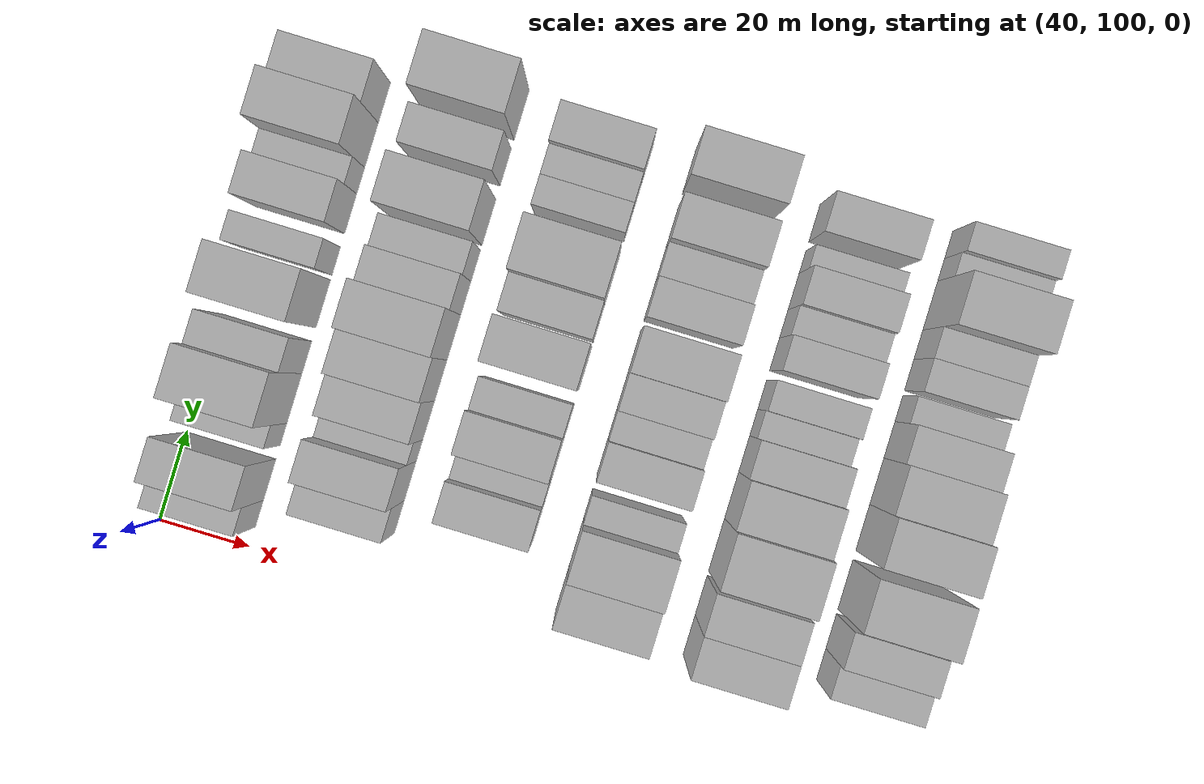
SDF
<sdf version="1.6">
 <world name="default">
  <model name="building_69">
   <static>1</static>
   <pose>50.0000 107.4569 0 0.000000 0.000000 0.000000</pose>
   <link name="link">
    <pose>0 0 7.50 0 0 0</pose>
    <collision name="collision"><geometry><box><size>20.0000 6.0165 15.0000</size></box></geometry></collision>
    <visual name="visual">
     <cast_shadows>0</cast_shadows>
     <geometry><box><size>20.0000 6.0165 15.0000</size></box></geometry>
     <material>
      <script>
       <uri>model://HANNAS_wall/materials/scripts</uri>
       <uri>model://HANNAS_wall/materials/textures</uri>
       <name>vrc/HANNAS_wall</name>
      </script>
     </material>
    </visual>
   </link>
  </model>
  <model name="building_70">
   <static>1</static>
   <pose>50.0000 115.1150 0 0.000000 0.000000 0.000000</pose>
   <link name="link">
    <pose>0 0 10.50 0 0 0</pose>
    <collision name="collision"><geometry><box><size>20.0000 9.2997 21.0000</size></box></geometry></collision>
    <visual name="visual">
     <cast_shadows>0</cast_shadows>
     <geometry><box><size>20.0000 9.2997 21.0000</size></box></geometry>
     <material>
      <script>
       <uri>model://HANNAS_wall/materials/scripts</uri>
       <uri>model://HANNAS_wall/materials/textures</uri>
       <name>vrc/HANNAS_wall</name>
      </script>
     </material>
    </visual>
   </link>
  </model>
  <model name="building_71">
   <static>1</static>
   <pose>50.0000 125.2679 0 0.000000 0.000000 0.000000</pose>
   <link name="link">
    <pose>0 0 6.00 0 0 0</pose>
    <collision name="collision"><geometry><box><size>20.0000 5.0061 12.0000</size></box></geometry></collision>
    <visual name="visual">
     <cast_shadows>0</cast_shadows>
     <geometry><box><size>20.0000 5.0061 12.0000</size></box></geometry>
     <material>
      <script>
       <uri>model://HANNAS_wall/materials/scripts</uri>
       <uri>model://HANNAS_wall/materials/textures</uri>
       <name>vrc/HANNAS_wall</name>
      </script>
     </material>
    </visual>
   </link>
  </model>
  <model name="building_72">
   <static>1</static>
   <pose>50.0000 133.3773 0 0.000000 0.000000 0.000000</pose>
   <link name="link">
    <pose>0 0 12.00 0 0 0</pose>
    <collision name="collision"><geometry><box><size>20.0000 11.2127 24.0000</size></box></geometry></collision>
    <visual name="visual">
     <cast_shadows>0</cast_shadows>
     <geometry><box><size>20.0000 11.2127 24.0000</size></box></geometry>
     <material>
      <script>
       <uri>model://HANNAS_wall/materials/scripts</uri>
       <uri>model://HANNAS_wall/materials/textures</uri>
       <name>vrc/HANNAS_wall</name>
      </script>
     </material>
    </visual>
   </link>
  </model>
  <model name="building_73">
   <static>1</static>
   <pose>50.0000 142.6111 0 0.000000 0.000000 0.000000</pose>
   <link name="link">
    <pose>0 0 9.00 0 0 0</pose>
    <collision name="collision"><geometry><box><size>20.0000 7.2549 18.0000</size></box></geometry></collision>
    <visual name="visual">
     <cast_shadows>0</cast_shadows>
     <geometry><box><size>20.0000 7.2549 18.0000</size></box></geometry>
     <material>
      <script>
       <uri>model://HANNAS_wall/materials/scripts</uri>
       <uri>model://HANNAS_wall/materials/textures</uri>
       <name>vrc/HANNAS_wall</name>
      </script>
     </material>
    </visual>
   </link>
  </model>
  <model name="building_74">
   <static>1</static>
   <pose>50.0000 154.6305 0 0.000000 0.000000 0.000000</pose>
   <link name="link">
    <pose>0 0 12.00 0 0 0</pose>
    <collision name="collision"><geometry><box><size>20.0000 10.7839 24.0000</size></box></geometry></collision>
    <visual name="visual">
     <cast_shadows>0</cast_shadows>
     <geometry><box><size>20.0000 10.7839 24.0000</size></box></geometry>
     <material>
      <script>
       <uri>model://HANNAS_wall/materials/scripts</uri>
       <uri>model://HANNAS_wall/materials/textures</uri>
       <name>vrc/HANNAS_wall</name>
      </script>
     </material>
    </visual>
   </link>
  </model>
  <model name="building_75">
   <static>1</static>
   <pose>50.0000 164.1922 0 0.000000 0.000000 0.000000</pose>
   <link name="link">
    <pose>0 0 7.50 0 0 0</pose>
    <collision name="collision"><geometry><box><size>20.0000 6.3394 15.0000</size></box></geometry></collision>
    <visual name="visual">
     <cast_shadows>0</cast_shadows>
     <geometry><box><size>20.0000 6.3394 15.0000</size></box></geometry>
     <material>
      <script>
       <uri>model://HANNAS_wall/materials/scripts</uri>
       <uri>model://HANNAS_wall/materials/textures</uri>
       <name>vrc/HANNAS_wall</name>
      </script>
     </material>
    </visual>
   </link>
  </model>
  <model name="building_76">
   <static>1</static>
   <pose>50.0000 174.8558 0 0.000000 0.000000 0.000000</pose>
   <link name="link">
    <pose>0 0 9.00 0 0 0</pose>
    <collision name="collision"><geometry><box><size>20.0000 8.9878 18.0000</size></box></geometry></collision>
    <visual name="visual">
     <cast_shadows>0</cast_shadows>
     <geometry><box><size>20.0000 8.9878 18.0000</size></box></geometry>
     <material>
      <script>
       <uri>model://HANNAS_wall/materials/scripts</uri>
       <uri>model://HANNAS_wall/materials/textures</uri>
       <name>vrc/HANNAS_wall</name>
      </script>
     </material>
    </visual>
   </link>
  </model>
  <model name="building_77">
   <static>1</static>
   <pose>50.0000 182.2877 0 0.000000 0.000000 0.000000</pose>
   <link name="link">
    <pose>0 0 6.00 0 0 0</pose>
    <collision name="collision"><geometry><box><size>20.0000 5.8762 12.0000</size></box></geometry></collision>
    <visual name="visual">
     <cast_shadows>0</cast_shadows>
     <geometry><box><size>20.0000 5.8762 12.0000</size></box></geometry>
     <material>
      <script>
       <uri>model://HANNAS_wall/materials/scripts</uri>
       <uri>model://HANNAS_wall/materials/textures</uri>
       <name>vrc/HANNAS_wall</name>
      </script>
     </material>
    </visual>
   </link>
  </model>
  <model name="building_78">
   <static>1</static>
   <pose>50.0000 190.2573 0 0.000000 0.000000 0.000000</pose>
   <link name="link">
    <pose>0 0 12.00 0 0 0</pose>
    <collision name="collision"><geometry><box><size>20.0000 10.0630 24.0000</size></box></geometry></collision>
    <visual name="visual">
     <cast_shadows>0</cast_shadows>
     <geometry><box><size>20.0000 10.0630 24.0000</size></box></geometry>
     <material>
      <script>
       <uri>model://HANNAS_wall/materials/scripts</uri>
       <uri>model://HANNAS_wall/materials/textures</uri>
       <name>vrc/HANNAS_wall</name>
      </script>
     </material>
    </visual>
   </link>
  </model>
  <model name="building_79">
   <static>1</static>
   <pose>50.0000 199.7857 0 0.000000 0.000000 0.000000</pose>
   <link name="link">
    <pose>0 0 9.00 0 0 0</pose>
    <collision name="collision"><geometry><box><size>20.0000 8.9939 18.0000</size></box></geometry></collision>
    <visual name="visual">
     <cast_shadows>0</cast_shadows>
     <geometry><box><size>20.0000 8.9939 18.0000</size></box></geometry>
     <material>
      <script>
       <uri>model://HANNAS_wall/materials/scripts</uri>
       <uri>model://HANNAS_wall/materials/textures</uri>
       <name>vrc/HANNAS_wall</name>
      </script>
     </material>
    </visual>
   </link>
  </model>
  <model name="building_187">
   <static>1</static>
   <pose>79.0000 115.5072 0 0.000000 0.000000 0.000000</pose>
   <link name="link">
    <pose>0 0 7.50 0 0 0</pose>
    <collision name="collision"><geometry><box><size>20.0000 7.3291 15.0000</size></box></geometry></collision>
    <visual name="visual">
     <cast_shadows>0</cast_shadows>
     <geometry><box><size>20.0000 7.3291 15.0000</size></box></geometry>
     <material>
      <script>
       <uri>model://HANNAS_wall/materials/scripts</uri>
       <uri>model://HANNAS_wall/materials/textures</uri>
       <name>vrc/HANNAS_wall</name>
      </script>
     </material>
    </visual>
   </link>
  </model>
  <model name="building_188">
   <static>1</static>
   <pose>79.0000 123.6156 0 0.000000 0.000000 0.000000</pose>
   <link name="link">
    <pose>0 0 10.50 0 0 0</pose>
    <collision name="collision"><geometry><box><size>20.0000 8.8877 21.0000</size></box></geometry></collision>
    <visual name="visual">
     <cast_shadows>0</cast_shadows>
     <geometry><box><size>20.0000 8.8877 21.0000</size></box></geometry>
     <material>
      <script>
       <uri>model://HANNAS_wall/materials/scripts</uri>
       <uri>model://HANNAS_wall/materials/textures</uri>
       <name>vrc/HANNAS_wall</name>
      </script>
     </material>
    </visual>
   </link>
  </model>
  <model name="building_189">
   <static>1</static>
   <pose>79.0000 130.4617 0 0.000000 0.000000 0.000000</pose>
   <link name="link">
    <pose>0 0 6.00 0 0 0</pose>
    <collision name="collision"><geometry><box><size>20.0000 4.8045 12.0000</size></box></geometry></collision>
    <visual name="visual">
     <cast_shadows>0</cast_shadows>
     <geometry><box><size>20.0000 4.8045 12.0000</size></box></geometry>
     <material>
      <script>
       <uri>model://HANNAS_wall/materials/scripts</uri>
       <uri>model://HANNAS_wall/materials/textures</uri>
       <name>vrc/HANNAS_wall</name>
      </script>
     </material>
    </visual>
   </link>
  </model>
  <model name="building_190">
   <static>1</static>
   <pose>79.0000 137.2318 0 0.000000 0.000000 0.000000</pose>
   <link name="link">
    <pose>0 0 9.00 0 0 0</pose>
    <collision name="collision"><geometry><box><size>20.0000 8.7357 18.0000</size></box></geometry></collision>
    <visual name="visual">
     <cast_shadows>0</cast_shadows>
     <geometry><box><size>20.0000 8.7357 18.0000</size></box></geometry>
     <material>
      <script>
       <uri>model://HANNAS_wall/materials/scripts</uri>
       <uri>model://HANNAS_wall/materials/textures</uri>
       <name>vrc/HANNAS_wall</name>
      </script>
     </material>
    </visual>
   </link>
  </model>
  <model name="building_191">
   <static>1</static>
   <pose>79.0000 146.2178 0 0.000000 0.000000 0.000000</pose>
   <link name="link">
    <pose>0 0 10.50 0 0 0</pose>
    <collision name="collision"><geometry><box><size>20.0000 9.2363 21.0000</size></box></geometry></collision>
    <visual name="visual">
     <cast_shadows>0</cast_shadows>
     <geometry><box><size>20.0000 9.2363 21.0000</size></box></geometry>
     <material>
      <script>
       <uri>model://HANNAS_wall/materials/scripts</uri>
       <uri>model://HANNAS_wall/materials/textures</uri>
       <name>vrc/HANNAS_wall</name>
      </script>
     </material>
    </visual>
   </link>
  </model>
  <model name="building_192">
   <static>1</static>
   <pose>79.0000 155.8728 0 0.000000 0.000000 0.000000</pose>
   <link name="link">
    <pose>0 0 12.00 0 0 0</pose>
    <collision name="collision"><geometry><box><size>20.0000 10.0738 24.0000</size></box></geometry></collision>
    <visual name="visual">
     <cast_shadows>0</cast_shadows>
     <geometry><box><size>20.0000 10.0738 24.0000</size></box></geometry>
     <material>
      <script>
       <uri>model://HANNAS_wall/materials/scripts</uri>
       <uri>model://HANNAS_wall/materials/textures</uri>
       <name>vrc/HANNAS_wall</name>
      </script>
     </material>
    </visual>
   </link>
  </model>
  <model name="building_193">
   <static>1</static>
   <pose>79.0000 164.6896 0 0.000000 0.000000 0.000000</pose>
   <link name="link">
    <pose>0 0 9.00 0 0 0</pose>
    <collision name="collision"><geometry><box><size>20.0000 7.5597 18.0000</size></box></geometry></collision>
    <visual name="visual">
     <cast_shadows>0</cast_shadows>
     <geometry><box><size>20.0000 7.5597 18.0000</size></box></geometry>
     <material>
      <script>
       <uri>model://HANNAS_wall/materials/scripts</uri>
       <uri>model://HANNAS_wall/materials/textures</uri>
       <name>vrc/HANNAS_wall</name>
      </script>
     </material>
    </visual>
   </link>
  </model>
  <model name="building_194">
   <static>1</static>
   <pose>79.0000 172.0007 0 0.000000 0.000000 0.000000</pose>
   <link name="link">
    <pose>0 0 7.50 0 0 0</pose>
    <collision name="collision"><geometry><box><size>20.0000 7.0624 15.0000</size></box></geometry></collision>
    <visual name="visual">
     <cast_shadows>0</cast_shadows>
     <geometry><box><size>20.0000 7.0624 15.0000</size></box></geometry>
     <material>
      <script>
       <uri>model://HANNAS_wall/materials/scripts</uri>
       <uri>model://HANNAS_wall/materials/textures</uri>
       <name>vrc/HANNAS_wall</name>
      </script>
     </material>
    </visual>
   </link>
  </model>
  <model name="building_195">
   <static>1</static>
   <pose>79.0000 181.7162 0 0.000000 0.000000 0.000000</pose>
   <link name="link">
    <pose>0 0 12.00 0 0 0</pose>
    <collision name="collision"><geometry><box><size>20.0000 10.3686 24.0000</size></box></geometry></collision>
    <visual name="visual">
     <cast_shadows>0</cast_shadows>
     <geometry><box><size>20.0000 10.3686 24.0000</size></box></geometry>
     <material>
      <script>
       <uri>model://HANNAS_wall/materials/scripts</uri>
       <uri>model://HANNAS_wall/materials/textures</uri>
       <name>vrc/HANNAS_wall</name>
      </script>
     </material>
    </visual>
   </link>
  </model>
  <model name="building_196">
   <static>1</static>
   <pose>79.0000 194.0558 0 0.000000 0.000000 0.000000</pose>
   <link name="link">
    <pose>0 0 9.00 0 0 0</pose>
    <collision name="collision"><geometry><box><size>20.0000 8.3106 18.0000</size></box></geometry></collision>
    <visual name="visual">
     <cast_shadows>0</cast_shadows>
     <geometry><box><size>20.0000 8.3106 18.0000</size></box></geometry>
     <material>
      <script>
       <uri>model://HANNAS_wall/materials/scripts</uri>
       <uri>model://HANNAS_wall/materials/textures</uri>
       <name>vrc/HANNAS_wall</name>
      </script>
     </material>
    </visual>
   </link>
  </model>
  <model name="building_197">
   <static>1</static>
   <pose>79.0000 205.8120 0 0.000000 0.000000 0.000000</pose>
   <link name="link">
    <pose>0 0 12.00 0 0 0</pose>
    <collision name="collision"><geometry><box><size>20.0000 11.2017 24.0000</size></box></geometry></collision>
    <visual name="visual">
     <cast_shadows>0</cast_shadows>
     <geometry><box><size>20.0000 11.2017 24.0000</size></box></geometry>
     <material>
      <script>
       <uri>model://HANNAS_wall/materials/scripts</uri>
       <uri>model://HANNAS_wall/materials/textures</uri>
       <name>vrc/HANNAS_wall</name>
      </script>
     </material>
    </visual>
   </link>
  </model>
  <model name="building_287">
   <static>1</static>
   <pose>108.0000 123.6061 0 0.000000 0.000000 0.000000</pose>
   <link name="link">
    <pose>0 0 9.00 0 0 0</pose>
    <collision name="collision"><geometry><box><size>20.0000 8.7304 18.0000</size></box></geometry></collision>
    <visual name="visual">
     <cast_shadows>0</cast_shadows>
     <geometry><box><size>20.0000 8.7304 18.0000</size></box></geometry>
     <material>
      <script>
       <uri>model://HANNAS_wall/materials/scripts</uri>
       <uri>model://HANNAS_wall/materials/textures</uri>
       <name>vrc/HANNAS_wall</name>
      </script>
     </material>
    </visual>
   </link>
  </model>
  <model name="building_288">
   <static>1</static>
   <pose>108.0000 130.8377 0 0.000000 0.000000 0.000000</pose>
   <link name="link">
    <pose>0 0 6.00 0 0 0</pose>
    <collision name="collision"><geometry><box><size>20.0000 5.7327 12.0000</size></box></geometry></collision>
    <visual name="visual">
     <cast_shadows>0</cast_shadows>
     <geometry><box><size>20.0000 5.7327 12.0000</size></box></geometry>
     <material>
      <script>
       <uri>model://HANNAS_wall/materials/scripts</uri>
       <uri>model://HANNAS_wall/materials/textures</uri>
       <name>vrc/HANNAS_wall</name>
      </script>
     </material>
    </visual>
   </link>
  </model>
  <model name="building_289">
   <static>1</static>
   <pose>108.0000 138.2492 0 0.000000 0.000000 0.000000</pose>
   <link name="link">
    <pose>0 0 10.50 0 0 0</pose>
    <collision name="collision"><geometry><box><size>20.0000 9.0903 21.0000</size></box></geometry></collision>
    <visual name="visual">
     <cast_shadows>0</cast_shadows>
     <geometry><box><size>20.0000 9.0903 21.0000</size></box></geometry>
     <material>
      <script>
       <uri>model://HANNAS_wall/materials/scripts</uri>
       <uri>model://HANNAS_wall/materials/textures</uri>
       <name>vrc/HANNAS_wall</name>
      </script>
     </material>
    </visual>
   </link>
  </model>
  <model name="building_290">
   <static>1</static>
   <pose>108.0000 146.3422 0 0.000000 0.000000 0.000000</pose>
   <link name="link">
    <pose>0 0 7.50 0 0 0</pose>
    <collision name="collision"><geometry><box><size>20.0000 7.0957 15.0000</size></box></geometry></collision>
    <visual name="visual">
     <cast_shadows>0</cast_shadows>
     <geometry><box><size>20.0000 7.0957 15.0000</size></box></geometry>
     <material>
      <script>
       <uri>model://HANNAS_wall/materials/scripts</uri>
       <uri>model://HANNAS_wall/materials/textures</uri>
       <name>vrc/HANNAS_wall</name>
      </script>
     </material>
    </visual>
   </link>
  </model>
  <model name="building_291">
   <static>1</static>
   <pose>108.0000 157.7060 0 0.000000 0.000000 0.000000</pose>
   <link name="link">
    <pose>0 0 12.00 0 0 0</pose>
    <collision name="collision"><geometry><box><size>20.0000 9.6319 24.0000</size></box></geometry></collision>
    <visual name="visual">
     <cast_shadows>0</cast_shadows>
     <geometry><box><size>20.0000 9.6319 24.0000</size></box></geometry>
     <material>
      <script>
       <uri>model://HANNAS_wall/materials/scripts</uri>
       <uri>model://HANNAS_wall/materials/textures</uri>
       <name>vrc/HANNAS_wall</name>
      </script>
     </material>
    </visual>
   </link>
  </model>
  <model name="building_292">
   <static>1</static>
   <pose>108.0000 167.5947 0 0.000000 0.000000 0.000000</pose>
   <link name="link">
    <pose>0 0 9.00 0 0 0</pose>
    <collision name="collision"><geometry><box><size>20.0000 8.1455 18.0000</size></box></geometry></collision>
    <visual name="visual">
     <cast_shadows>0</cast_shadows>
     <geometry><box><size>20.0000 8.1455 18.0000</size></box></geometry>
     <material>
      <script>
       <uri>model://HANNAS_wall/materials/scripts</uri>
       <uri>model://HANNAS_wall/materials/textures</uri>
       <name>vrc/HANNAS_wall</name>
      </script>
     </material>
    </visual>
   </link>
  </model>
  <model name="building_293">
   <static>1</static>
   <pose>108.0000 177.4233 0 0.000000 0.000000 0.000000</pose>
   <link name="link">
    <pose>0 0 12.00 0 0 0</pose>
    <collision name="collision"><geometry><box><size>20.0000 11.5117 24.0000</size></box></geometry></collision>
    <visual name="visual">
     <cast_shadows>0</cast_shadows>
     <geometry><box><size>20.0000 11.5117 24.0000</size></box></geometry>
     <material>
      <script>
       <uri>model://HANNAS_wall/materials/scripts</uri>
       <uri>model://HANNAS_wall/materials/textures</uri>
       <name>vrc/HANNAS_wall</name>
      </script>
     </material>
    </visual>
   </link>
  </model>
  <model name="building_294">
   <static>1</static>
   <pose>108.0000 189.3824 0 0.000000 0.000000 0.000000</pose>
   <link name="link">
    <pose>0 0 7.50 0 0 0</pose>
    <collision name="collision"><geometry><box><size>20.0000 6.4065 15.0000</size></box></geometry></collision>
    <visual name="visual">
     <cast_shadows>0</cast_shadows>
     <geometry><box><size>20.0000 6.4065 15.0000</size></box></geometry>
     <material>
      <script>
       <uri>model://HANNAS_wall/materials/scripts</uri>
       <uri>model://HANNAS_wall/materials/textures</uri>
       <name>vrc/HANNAS_wall</name>
      </script>
     </material>
    </visual>
   </link>
  </model>
  <model name="building_295">
   <static>1</static>
   <pose>108.0000 195.7931 0 0.000000 0.000000 0.000000</pose>
   <link name="link">
    <pose>0 0 7.50 0 0 0</pose>
    <collision name="collision"><geometry><box><size>20.0000 6.4149 15.0000</size></box></geometry></collision>
    <visual name="visual">
     <cast_shadows>0</cast_shadows>
     <geometry><box><size>20.0000 6.4149 15.0000</size></box></geometry>
     <material>
      <script>
       <uri>model://HANNAS_wall/materials/scripts</uri>
       <uri>model://HANNAS_wall/materials/textures</uri>
       <name>vrc/HANNAS_wall</name>
      </script>
     </material>
    </visual>
   </link>
  </model>
  <model name="building_296">
   <static>1</static>
   <pose>108.0000 203.2308 0 0.000000 0.000000 0.000000</pose>
   <link name="link">
    <pose>0 0 9.00 0 0 0</pose>
    <collision name="collision"><geometry><box><size>20.0000 8.4604 18.0000</size></box></geometry></collision>
    <visual name="visual">
     <cast_shadows>0</cast_shadows>
     <geometry><box><size>20.0000 8.4604 18.0000</size></box></geometry>
     <material>
      <script>
       <uri>model://HANNAS_wall/materials/scripts</uri>
       <uri>model://HANNAS_wall/materials/textures</uri>
       <name>vrc/HANNAS_wall</name>
      </script>
     </material>
    </visual>
   </link>
  </model>
  <model name="building_402">
   <static>1</static>
   <pose>137.0000 111.5499 0 0.000000 0.000000 0.000000</pose>
   <link name="link">
    <pose>0 0 10.50 0 0 0</pose>
    <collision name="collision"><geometry><box><size>20.0000 9.8660 21.0000</size></box></geometry></collision>
    <visual name="visual">
     <cast_shadows>0</cast_shadows>
     <geometry><box><size>20.0000 9.8660 21.0000</size></box></geometry>
     <material>
      <script>
       <uri>model://HANNAS_wall/materials/scripts</uri>
       <uri>model://HANNAS_wall/materials/textures</uri>
       <name>vrc/HANNAS_wall</name>
      </script>
     </material>
    </visual>
   </link>
  </model>
  <model name="building_403">
   <static>1</static>
   <pose>137.0000 121.9337 0 0.000000 0.000000 0.000000</pose>
   <link name="link">
    <pose>0 0 12.00 0 0 0</pose>
    <collision name="collision"><geometry><box><size>20.0000 10.9016 24.0000</size></box></geometry></collision>
    <visual name="visual">
     <cast_shadows>0</cast_shadows>
     <geometry><box><size>20.0000 10.9016 24.0000</size></box></geometry>
     <material>
      <script>
       <uri>model://HANNAS_wall/materials/scripts</uri>
       <uri>model://HANNAS_wall/materials/textures</uri>
       <name>vrc/HANNAS_wall</name>
      </script>
     </material>
    </visual>
   </link>
  </model>
  <model name="building_404">
   <static>1</static>
   <pose>137.0000 130.4725 0 0.000000 0.000000 0.000000</pose>
   <link name="link">
    <pose>0 0 7.50 0 0 0</pose>
    <collision name="collision"><geometry><box><size>20.0000 6.1761 15.0000</size></box></geometry></collision>
    <visual name="visual">
     <cast_shadows>0</cast_shadows>
     <geometry><box><size>20.0000 6.1761 15.0000</size></box></geometry>
     <material>
      <script>
       <uri>model://HANNAS_wall/materials/scripts</uri>
       <uri>model://HANNAS_wall/materials/textures</uri>
       <name>vrc/HANNAS_wall</name>
      </script>
     </material>
    </visual>
   </link>
  </model>
  <model name="building_405">
   <static>1</static>
   <pose>137.0000 140.7983 0 0.000000 0.000000 0.000000</pose>
   <link name="link">
    <pose>0 0 9.00 0 0 0</pose>
    <collision name="collision"><geometry><box><size>20.0000 8.4754 18.0000</size></box></geometry></collision>
    <visual name="visual">
     <cast_shadows>0</cast_shadows>
     <geometry><box><size>20.0000 8.4754 18.0000</size></box></geometry>
     <material>
      <script>
       <uri>model://HANNAS_wall/materials/scripts</uri>
       <uri>model://HANNAS_wall/materials/textures</uri>
       <name>vrc/HANNAS_wall</name>
      </script>
     </material>
    </visual>
   </link>
  </model>
  <model name="building_406">
   <static>1</static>
   <pose>137.0000 148.2569 0 0.000000 0.000000 0.000000</pose>
   <link name="link">
    <pose>0 0 7.50 0 0 0</pose>
    <collision name="collision"><geometry><box><size>20.0000 6.4418 15.0000</size></box></geometry></collision>
    <visual name="visual">
     <cast_shadows>0</cast_shadows>
     <geometry><box><size>20.0000 6.4418 15.0000</size></box></geometry>
     <material>
      <script>
       <uri>model://HANNAS_wall/materials/scripts</uri>
       <uri>model://HANNAS_wall/materials/textures</uri>
       <name>vrc/HANNAS_wall</name>
      </script>
     </material>
    </visual>
   </link>
  </model>
  <model name="building_407">
   <static>1</static>
   <pose>137.0000 155.4436 0 0.000000 0.000000 0.000000</pose>
   <link name="link">
    <pose>0 0 9.00 0 0 0</pose>
    <collision name="collision"><geometry><box><size>20.0000 7.9316 18.0000</size></box></geometry></collision>
    <visual name="visual">
     <cast_shadows>0</cast_shadows>
     <geometry><box><size>20.0000 7.9316 18.0000</size></box></geometry>
     <material>
      <script>
       <uri>model://HANNAS_wall/materials/scripts</uri>
       <uri>model://HANNAS_wall/materials/textures</uri>
       <name>vrc/HANNAS_wall</name>
      </script>
     </material>
    </visual>
   </link>
  </model>
  <model name="building_408">
   <static>1</static>
   <pose>137.0000 164.2584 0 0.000000 0.000000 0.000000</pose>
   <link name="link">
    <pose>0 0 10.50 0 0 0</pose>
    <collision name="collision"><geometry><box><size>20.0000 9.6980 21.0000</size></box></geometry></collision>
    <visual name="visual">
     <cast_shadows>0</cast_shadows>
     <geometry><box><size>20.0000 9.6980 21.0000</size></box></geometry>
     <material>
      <script>
       <uri>model://HANNAS_wall/materials/scripts</uri>
       <uri>model://HANNAS_wall/materials/textures</uri>
       <name>vrc/HANNAS_wall</name>
      </script>
     </material>
    </visual>
   </link>
  </model>
  <model name="building_409">
   <static>1</static>
   <pose>137.0000 175.3662 0 0.000000 0.000000 0.000000</pose>
   <link name="link">
    <pose>0 0 9.00 0 0 0</pose>
    <collision name="collision"><geometry><box><size>20.0000 8.5176 18.0000</size></box></geometry></collision>
    <visual name="visual">
     <cast_shadows>0</cast_shadows>
     <geometry><box><size>20.0000 8.5176 18.0000</size></box></geometry>
     <material>
      <script>
       <uri>model://HANNAS_wall/materials/scripts</uri>
       <uri>model://HANNAS_wall/materials/textures</uri>
       <name>vrc/HANNAS_wall</name>
      </script>
     </material>
    </visual>
   </link>
  </model>
  <model name="building_410">
   <static>1</static>
   <pose>137.0000 183.3610 0 0.000000 0.000000 0.000000</pose>
   <link name="link">
    <pose>0 0 7.50 0 0 0</pose>
    <collision name="collision"><geometry><box><size>20.0000 7.4719 15.0000</size></box></geometry></collision>
    <visual name="visual">
     <cast_shadows>0</cast_shadows>
     <geometry><box><size>20.0000 7.4719 15.0000</size></box></geometry>
     <material>
      <script>
       <uri>model://HANNAS_wall/materials/scripts</uri>
       <uri>model://HANNAS_wall/materials/textures</uri>
       <name>vrc/HANNAS_wall</name>
      </script>
     </material>
    </visual>
   </link>
  </model>
  <model name="building_411">
   <static>1</static>
   <pose>137.0000 191.8488 0 0.000000 0.000000 0.000000</pose>
   <link name="link">
    <pose>0 0 10.50 0 0 0</pose>
    <collision name="collision"><geometry><box><size>20.0000 9.5037 21.0000</size></box></geometry></collision>
    <visual name="visual">
     <cast_shadows>0</cast_shadows>
     <geometry><box><size>20.0000 9.5037 21.0000</size></box></geometry>
     <material>
      <script>
       <uri>model://HANNAS_wall/materials/scripts</uri>
       <uri>model://HANNAS_wall/materials/textures</uri>
       <name>vrc/HANNAS_wall</name>
      </script>
     </material>
    </visual>
   </link>
  </model>
  <model name="building_412">
   <static>1</static>
   <pose>137.0000 204.5458 0 0.000000 0.000000 0.000000</pose>
   <link name="link">
    <pose>0 0 12.00 0 0 0</pose>
    <collision name="collision"><geometry><box><size>20.0000 9.8904 24.0000</size></box></geometry></collision>
    <visual name="visual">
     <cast_shadows>0</cast_shadows>
     <geometry><box><size>20.0000 9.8904 24.0000</size></box></geometry>
     <material>
      <script>
       <uri>model://HANNAS_wall/materials/scripts</uri>
       <uri>model://HANNAS_wall/materials/textures</uri>
       <name>vrc/HANNAS_wall</name>
      </script>
     </material>
    </visual>
   </link>
  </model>
  <model name="building_513">
   <static>1</static>
   <pose>166.0000 109.5162 0 0.000000 0.000000 0.000000</pose>
   <link name="link">
    <pose>0 0 10.50 0 0 0</pose>
    <collision name="collision"><geometry><box><size>20.0000 8.9089 21.0000</size></box></geometry></collision>
    <visual name="visual">
     <cast_shadows>0</cast_shadows>
     <geometry><box><size>20.0000 8.9089 21.0000</size></box></geometry>
     <material>
      <script>
       <uri>model://HANNAS_wall/materials/scripts</uri>
       <uri>model://HANNAS_wall/materials/textures</uri>
       <name>vrc/HANNAS_wall</name>
      </script>
     </material>
    </visual>
   </link>
  </model>
  <model name="building_514">
   <static>1</static>
   <pose>166.0000 118.4054 0 0.000000 0.000000 0.000000</pose>
   <link name="link">
    <pose>0 0 10.50 0 0 0</pose>
    <collision name="collision"><geometry><box><size>20.0000 8.8694 21.0000</size></box></geometry></collision>
    <visual name="visual">
     <cast_shadows>0</cast_shadows>
     <geometry><box><size>20.0000 8.8694 21.0000</size></box></geometry>
     <material>
      <script>
       <uri>model://HANNAS_wall/materials/scripts</uri>
       <uri>model://HANNAS_wall/materials/textures</uri>
       <name>vrc/HANNAS_wall</name>
      </script>
     </material>
    </visual>
   </link>
  </model>
  <model name="building_515">
   <static>1</static>
   <pose>166.0000 129.7503 0 0.000000 0.000000 0.000000</pose>
   <link name="link">
    <pose>0 0 12.00 0 0 0</pose>
    <collision name="collision"><geometry><box><size>20.0000 11.8204 24.0000</size></box></geometry></collision>
    <visual name="visual">
     <cast_shadows>0</cast_shadows>
     <geometry><box><size>20.0000 11.8204 24.0000</size></box></geometry>
     <material>
      <script>
       <uri>model://HANNAS_wall/materials/scripts</uri>
       <uri>model://HANNAS_wall/materials/textures</uri>
       <name>vrc/HANNAS_wall</name>
      </script>
     </material>
    </visual>
   </link>
  </model>
  <model name="building_516">
   <static>1</static>
   <pose>166.0000 140.8625 0 0.000000 0.000000 0.000000</pose>
   <link name="link">
    <pose>0 0 10.50 0 0 0</pose>
    <collision name="collision"><geometry><box><size>20.0000 10.4040 21.0000</size></box></geometry></collision>
    <visual name="visual">
     <cast_shadows>0</cast_shadows>
     <geometry><box><size>20.0000 10.4040 21.0000</size></box></geometry>
     <material>
      <script>
       <uri>model://HANNAS_wall/materials/scripts</uri>
       <uri>model://HANNAS_wall/materials/textures</uri>
       <name>vrc/HANNAS_wall</name>
      </script>
     </material>
    </visual>
   </link>
  </model>
  <model name="building_517">
   <static>1</static>
   <pose>166.0000 150.1557 0 0.000000 0.000000 0.000000</pose>
   <link name="link">
    <pose>0 0 9.00 0 0 0</pose>
    <collision name="collision"><geometry><box><size>20.0000 8.1823 18.0000</size></box></geometry></collision>
    <visual name="visual">
     <cast_shadows>0</cast_shadows>
     <geometry><box><size>20.0000 8.1823 18.0000</size></box></geometry>
     <material>
      <script>
       <uri>model://HANNAS_wall/materials/scripts</uri>
       <uri>model://HANNAS_wall/materials/textures</uri>
       <name>vrc/HANNAS_wall</name>
      </script>
     </material>
    </visual>
   </link>
  </model>
  <model name="building_518">
   <static>1</static>
   <pose>166.0000 157.2199 0 0.000000 0.000000 0.000000</pose>
   <link name="link">
    <pose>0 0 6.00 0 0 0</pose>
    <collision name="collision"><geometry><box><size>20.0000 5.9463 12.0000</size></box></geometry></collision>
    <visual name="visual">
     <cast_shadows>0</cast_shadows>
     <geometry><box><size>20.0000 5.9463 12.0000</size></box></geometry>
     <material>
      <script>
       <uri>model://HANNAS_wall/materials/scripts</uri>
       <uri>model://HANNAS_wall/materials/textures</uri>
       <name>vrc/HANNAS_wall</name>
      </script>
     </material>
    </visual>
   </link>
  </model>
  <model name="building_519">
   <static>1</static>
   <pose>166.0000 163.4840 0 0.000000 0.000000 0.000000</pose>
   <link name="link">
    <pose>0 0 7.50 0 0 0</pose>
    <collision name="collision"><geometry><box><size>20.0000 6.5818 15.0000</size></box></geometry></collision>
    <visual name="visual">
     <cast_shadows>0</cast_shadows>
     <geometry><box><size>20.0000 6.5818 15.0000</size></box></geometry>
     <material>
      <script>
       <uri>model://HANNAS_wall/materials/scripts</uri>
       <uri>model://HANNAS_wall/materials/textures</uri>
       <name>vrc/HANNAS_wall</name>
      </script>
     </material>
    </visual>
   </link>
  </model>
  <model name="building_520">
   <static>1</static>
   <pose>166.0000 172.4865 0 0.000000 0.000000 0.000000</pose>
   <link name="link">
    <pose>0 0 9.00 0 0 0</pose>
    <collision name="collision"><geometry><box><size>20.0000 7.4233 18.0000</size></box></geometry></collision>
    <visual name="visual">
     <cast_shadows>0</cast_shadows>
     <geometry><box><size>20.0000 7.4233 18.0000</size></box></geometry>
     <material>
      <script>
       <uri>model://HANNAS_wall/materials/scripts</uri>
       <uri>model://HANNAS_wall/materials/textures</uri>
       <name>vrc/HANNAS_wall</name>
      </script>
     </material>
    </visual>
   </link>
  </model>
  <model name="building_521">
   <static>1</static>
   <pose>166.0000 179.3559 0 0.000000 0.000000 0.000000</pose>
   <link name="link">
    <pose>0 0 7.50 0 0 0</pose>
    <collision name="collision"><geometry><box><size>20.0000 6.3154 15.0000</size></box></geometry></collision>
    <visual name="visual">
     <cast_shadows>0</cast_shadows>
     <geometry><box><size>20.0000 6.3154 15.0000</size></box></geometry>
     <material>
      <script>
       <uri>model://HANNAS_wall/materials/scripts</uri>
       <uri>model://HANNAS_wall/materials/textures</uri>
       <name>vrc/HANNAS_wall</name>
      </script>
     </material>
    </visual>
   </link>
  </model>
  <model name="building_522">
   <static>1</static>
   <pose>166.0000 186.5850 0 0.000000 0.000000 0.000000</pose>
   <link name="link">
    <pose>0 0 9.00 0 0 0</pose>
    <collision name="collision"><geometry><box><size>20.0000 8.1429 18.0000</size></box></geometry></collision>
    <visual name="visual">
     <cast_shadows>0</cast_shadows>
     <geometry><box><size>20.0000 8.1429 18.0000</size></box></geometry>
     <material>
      <script>
       <uri>model://HANNAS_wall/materials/scripts</uri>
       <uri>model://HANNAS_wall/materials/textures</uri>
       <name>vrc/HANNAS_wall</name>
      </script>
     </material>
    </visual>
   </link>
  </model>
  <model name="building_523">
   <static>1</static>
   <pose>166.0000 193.1891 0 0.000000 0.000000 0.000000</pose>
   <link name="link">
    <pose>0 0 6.00 0 0 0</pose>
    <collision name="collision"><geometry><box><size>20.0000 5.0654 12.0000</size></box></geometry></collision>
    <visual name="visual">
     <cast_shadows>0</cast_shadows>
     <geometry><box><size>20.0000 5.0654 12.0000</size></box></geometry>
     <material>
      <script>
       <uri>model://HANNAS_wall/materials/scripts</uri>
       <uri>model://HANNAS_wall/materials/textures</uri>
       <name>vrc/HANNAS_wall</name>
      </script>
     </material>
    </visual>
   </link>
  </model>
  <model name="building_524">
   <static>1</static>
   <pose>166.0000 201.9440 0 0.000000 0.000000 0.000000</pose>
   <link name="link">
    <pose>0 0 9.00 0 0 0</pose>
    <collision name="collision"><geometry><box><size>20.0000 8.4443 18.0000</size></box></geometry></collision>
    <visual name="visual">
     <cast_shadows>0</cast_shadows>
     <geometry><box><size>20.0000 8.4443 18.0000</size></box></geometry>
     <material>
      <script>
       <uri>model://HANNAS_wall/materials/scripts</uri>
       <uri>model://HANNAS_wall/materials/textures</uri>
       <name>vrc/HANNAS_wall</name>
      </script>
     </material>
    </visual>
   </link>
  </model>
  <model name="building_631">
   <static>1</static>
   <pose>195.0000 111.7590 0 0.000000 0.000000 0.000000</pose>
   <link name="link">
    <pose>0 0 7.50 0 0 0</pose>
    <collision name="collision"><geometry><box><size>20.0000 7.0051 15.0000</size></box></geometry></collision>
    <visual name="visual">
     <cast_shadows>0</cast_shadows>
     <geometry><box><size>20.0000 7.0051 15.0000</size></box></geometry>
     <material>
      <script>
       <uri>model://HANNAS_wall/materials/scripts</uri>
       <uri>model://HANNAS_wall/materials/textures</uri>
       <name>vrc/HANNAS_wall</name>
      </script>
     </material>
    </visual>
   </link>
  </model>
  <model name="building_632">
   <static>1</static>
   <pose>195.0000 119.1657 0 0.000000 0.000000 0.000000</pose>
   <link name="link">
    <pose>0 0 9.00 0 0 0</pose>
    <collision name="collision"><geometry><box><size>20.0000 7.8083 18.0000</size></box></geometry></collision>
    <visual name="visual">
     <cast_shadows>0</cast_shadows>
     <geometry><box><size>20.0000 7.8083 18.0000</size></box></geometry>
     <material>
      <script>
       <uri>model://HANNAS_wall/materials/scripts</uri>
       <uri>model://HANNAS_wall/materials/textures</uri>
       <name>vrc/HANNAS_wall</name>
      </script>
     </material>
    </visual>
   </link>
  </model>
  <model name="building_633">
   <static>1</static>
   <pose>195.0000 129.6545 0 0.000000 0.000000 0.000000</pose>
   <link name="link">
    <pose>0 0 12.00 0 0 0</pose>
    <collision name="collision"><geometry><box><size>20.0000 11.1693 24.0000</size></box></geometry></collision>
    <visual name="visual">
     <cast_shadows>0</cast_shadows>
     <geometry><box><size>20.0000 11.1693 24.0000</size></box></geometry>
     <material>
      <script>
       <uri>model://HANNAS_wall/materials/scripts</uri>
       <uri>model://HANNAS_wall/materials/textures</uri>
       <name>vrc/HANNAS_wall</name>
      </script>
     </material>
    </visual>
   </link>
  </model>
  <model name="building_634">
   <static>1</static>
   <pose>195.0000 142.4339 0 0.000000 0.000000 0.000000</pose>
   <link name="link">
    <pose>0 0 12.00 0 0 0</pose>
    <collision name="collision"><geometry><box><size>20.0000 10.3895 24.0000</size></box></geometry></collision>
    <visual name="visual">
     <cast_shadows>0</cast_shadows>
     <geometry><box><size>20.0000 10.3895 24.0000</size></box></geometry>
     <material>
      <script>
       <uri>model://HANNAS_wall/materials/scripts</uri>
       <uri>model://HANNAS_wall/materials/textures</uri>
       <name>vrc/HANNAS_wall</name>
      </script>
     </material>
    </visual>
   </link>
  </model>
  <model name="building_635">
   <static>1</static>
   <pose>195.0000 152.8358 0 0.000000 0.000000 0.000000</pose>
   <link name="link">
    <pose>0 0 10.50 0 0 0</pose>
    <collision name="collision"><geometry><box><size>20.0000 10.4142 21.0000</size></box></geometry></collision>
    <visual name="visual">
     <cast_shadows>0</cast_shadows>
     <geometry><box><size>20.0000 10.4142 21.0000</size></box></geometry>
     <material>
      <script>
       <uri>model://HANNAS_wall/materials/scripts</uri>
       <uri>model://HANNAS_wall/materials/textures</uri>
       <name>vrc/HANNAS_wall</name>
      </script>
     </material>
    </visual>
   </link>
  </model>
  <model name="building_636">
   <static>1</static>
   <pose>195.0000 162.1483 0 0.000000 0.000000 0.000000</pose>
   <link name="link">
    <pose>0 0 9.00 0 0 0</pose>
    <collision name="collision"><geometry><box><size>20.0000 8.2109 18.0000</size></box></geometry></collision>
    <visual name="visual">
     <cast_shadows>0</cast_shadows>
     <geometry><box><size>20.0000 8.2109 18.0000</size></box></geometry>
     <material>
      <script>
       <uri>model://HANNAS_wall/materials/scripts</uri>
       <uri>model://HANNAS_wall/materials/textures</uri>
       <name>vrc/HANNAS_wall</name>
      </script>
     </material>
    </visual>
   </link>
  </model>
  <model name="building_637">
   <static>1</static>
   <pose>195.0000 169.2025 0 0.000000 0.000000 0.000000</pose>
   <link name="link">
    <pose>0 0 6.00 0 0 0</pose>
    <collision name="collision"><geometry><box><size>20.0000 5.8974 12.0000</size></box></geometry></collision>
    <visual name="visual">
     <cast_shadows>0</cast_shadows>
     <geometry><box><size>20.0000 5.8974 12.0000</size></box></geometry>
     <material>
      <script>
       <uri>model://HANNAS_wall/materials/scripts</uri>
       <uri>model://HANNAS_wall/materials/textures</uri>
       <name>vrc/HANNAS_wall</name>
      </script>
     </material>
    </visual>
   </link>
  </model>
  <model name="building_638">
   <static>1</static>
   <pose>195.0000 176.6872 0 0.000000 0.000000 0.000000</pose>
   <link name="link">
    <pose>0 0 7.50 0 0 0</pose>
    <collision name="collision"><geometry><box><size>20.0000 7.0720 15.0000</size></box></geometry></collision>
    <visual name="visual">
     <cast_shadows>0</cast_shadows>
     <geometry><box><size>20.0000 7.0720 15.0000</size></box></geometry>
     <material>
      <script>
       <uri>model://HANNAS_wall/materials/scripts</uri>
       <uri>model://HANNAS_wall/materials/textures</uri>
       <name>vrc/HANNAS_wall</name>
      </script>
     </material>
    </visual>
   </link>
  </model>
  <model name="building_639">
   <static>1</static>
   <pose>195.0000 183.5280 0 0.000000 0.000000 0.000000</pose>
   <link name="link">
    <pose>0 0 7.50 0 0 0</pose>
    <collision name="collision"><geometry><box><size>20.0000 6.6095 15.0000</size></box></geometry></collision>
    <visual name="visual">
     <cast_shadows>0</cast_shadows>
     <geometry><box><size>20.0000 6.6095 15.0000</size></box></geometry>
     <material>
      <script>
       <uri>model://HANNAS_wall/materials/scripts</uri>
       <uri>model://HANNAS_wall/materials/textures</uri>
       <name>vrc/HANNAS_wall</name>
      </script>
     </material>
    </visual>
   </link>
  </model>
  <model name="building_640">
   <static>1</static>
   <pose>195.0000 192.3133 0 0.000000 0.000000 0.000000</pose>
   <link name="link">
    <pose>0 0 12.00 0 0 0</pose>
    <collision name="collision"><geometry><box><size>20.0000 10.9612 24.0000</size></box></geometry></collision>
    <visual name="visual">
     <cast_shadows>0</cast_shadows>
     <geometry><box><size>20.0000 10.9612 24.0000</size></box></geometry>
     <material>
      <script>
       <uri>model://HANNAS_wall/materials/scripts</uri>
       <uri>model://HANNAS_wall/materials/textures</uri>
       <name>vrc/HANNAS_wall</name>
      </script>
     </material>
    </visual>
   </link>
  </model>
  <model name="building_641">
   <static>1</static>
   <pose>195.0000 200.3261 0 0.000000 0.000000 0.000000</pose>
   <link name="link">
    <pose>0 0 6.00 0 0 0</pose>
    <collision name="collision"><geometry><box><size>20.0000 5.0644 12.0000</size></box></geometry></collision>
    <visual name="visual">
     <cast_shadows>0</cast_shadows>
     <geometry><box><size>20.0000 5.0644 12.0000</size></box></geometry>
     <material>
      <script>
       <uri>model://HANNAS_wall/materials/scripts</uri>
       <uri>model://HANNAS_wall/materials/textures</uri>
       <name>vrc/HANNAS_wall</name>
      </script>
     </material>
    </visual>
   </link>
  </model>
  <model name="building_642">
   <static>1</static>
   <pose>195.0000 205.9479 0 0.000000 0.000000 0.000000</pose>
   <link name="link">
    <pose>0 0 7.50 0 0 0</pose>
    <collision name="collision"><geometry><box><size>20.0000 6.1793 15.0000</size></box></geometry></collision>
    <visual name="visual">
     <cast_shadows>0</cast_shadows>
     <geometry><box><size>20.0000 6.1793 15.0000</size></box></geometry>
     <material>
      <script>
       <uri>model://HANNAS_wall/materials/scripts</uri>
       <uri>model://HANNAS_wall/materials/textures</uri>
       <name>vrc/HANNAS_wall</name>
      </script>
     </material>
    </visual>
   </link>
  </model>
 </world>
</sdf>
